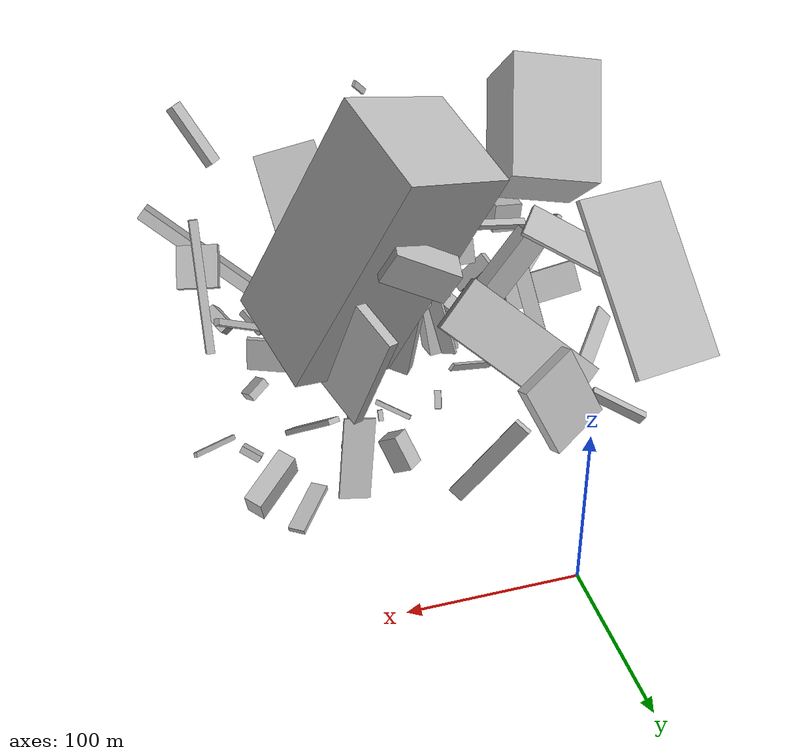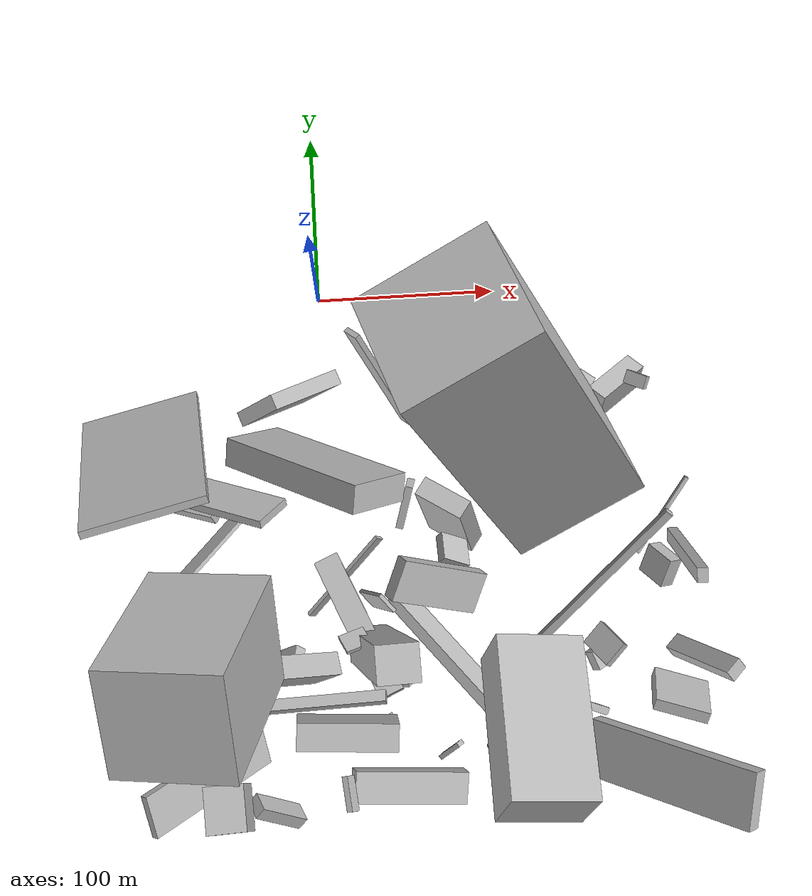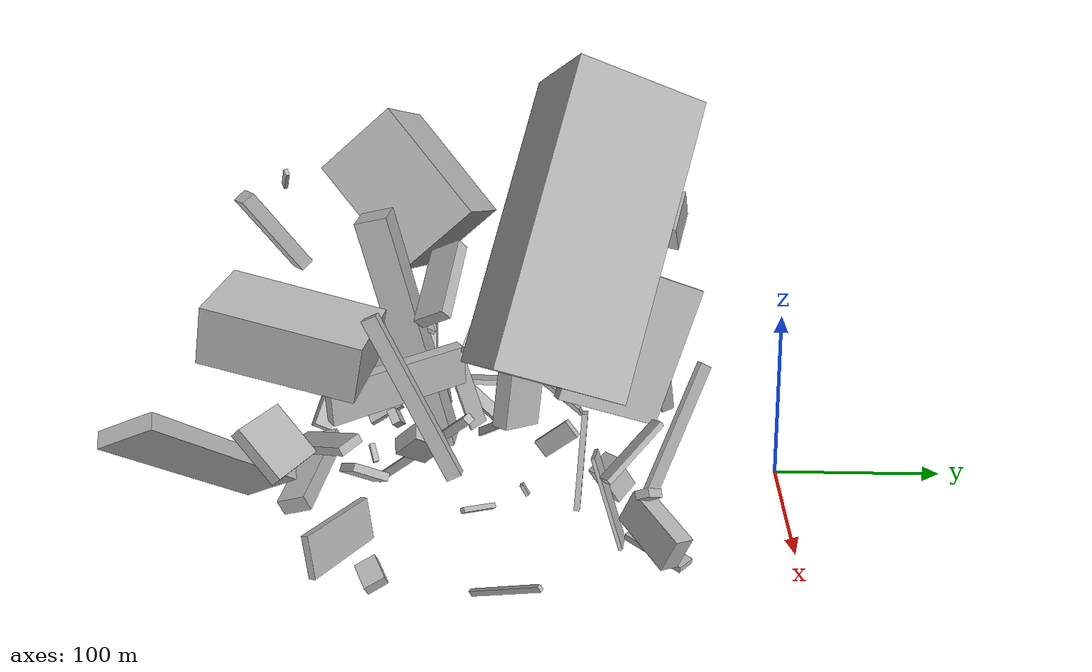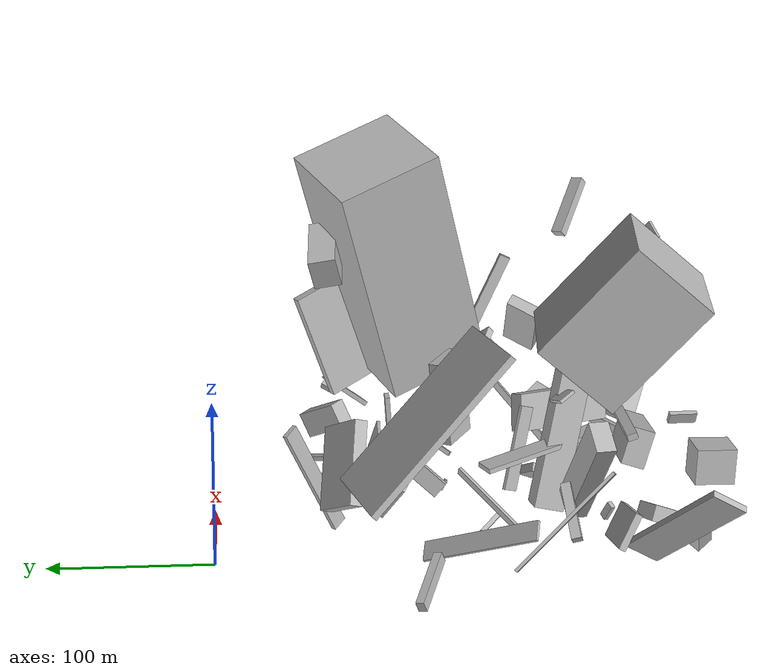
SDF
<sdf version="1.6">
 <world name="default">
  <model name="building_2">
   <static>0</static>
   <pose>-4.265464963011265 -214.34550953891124 35.140416664109665 0.7161109243127337 -0.007068046469748389 -1.4078705098081357</pose>
   <link name="link">
    <gravity>0</gravity>
    <pose>0 0 36.5 0 0 0</pose>
    <collision name="collision"><geometry><box><size>12 20 73</size></box></geometry></collision>
    <visual name="visual">
     <cast_shadows>0</cast_shadows>
     <geometry><box><size>12 20 73</size></box></geometry>
     <material>
      <script>
       <uri>model://HANNAS_wall/materials/scripts</uri>
       <uri>model://HANNAS_wall/materials/textures</uri>
       <name>vrc/HANNAS_wall</name>
      </script>
     </material>
    </visual>
   </link>
  </model>
  <model name="building_21">
   <static>0</static>
   <pose>8.457655197368247 -112.51763174960851 65.24477038749917 0.6654835469640487 -0.5815607926443658 -0.557341626577998</pose>
   <link name="link">
    <gravity>0</gravity>
    <pose>0 0 18.0 0 0 0</pose>
    <collision name="collision"><geometry><box><size>93 15 36</size></box></geometry></collision>
    <visual name="visual">
     <cast_shadows>0</cast_shadows>
     <geometry><box><size>93 15 36</size></box></geometry>
     <material>
      <script>
       <uri>model://HANNAS_wall/materials/scripts</uri>
       <uri>model://HANNAS_wall/materials/textures</uri>
       <name>vrc/HANNAS_wall</name>
      </script>
     </material>
    </visual>
   </link>
  </model>
  <model name="building_30">
   <static>0</static>
   <pose>117.10664770685433 -130.943974789597 100.99099463609906 0.2889966119366335 -0.3691784653962624 -1.268954633508064</pose>
   <link name="link">
    <gravity>0</gravity>
    <pose>0 0 75.0 0 0 0</pose>
    <collision name="collision"><geometry><box><size>66 68 150</size></box></geometry></collision>
    <visual name="visual">
     <cast_shadows>0</cast_shadows>
     <geometry><box><size>66 68 150</size></box></geometry>
     <material>
      <script>
       <uri>model://HANNAS_wall/materials/scripts</uri>
       <uri>model://HANNAS_wall/materials/textures</uri>
       <name>vrc/HANNAS_wall</name>
      </script>
     </material>
    </visual>
   </link>
  </model>
  <model name="building_32">
   <static>0</static>
   <pose>44.03630529259533 -130.80900042439174 38.514397665553915 -1.5089520208758345 -0.6667997113792358 1.2417032428408032</pose>
   <link name="link">
    <gravity>0</gravity>
    <pose>0 0 2.0 0 0 0</pose>
    <collision name="collision"><geometry><box><size>25 11 4</size></box></geometry></collision>
    <visual name="visual">
     <cast_shadows>0</cast_shadows>
     <geometry><box><size>25 11 4</size></box></geometry>
     <material>
      <script>
       <uri>model://HANNAS_wall/materials/scripts</uri>
       <uri>model://HANNAS_wall/materials/textures</uri>
       <name>vrc/HANNAS_wall</name>
      </script>
     </material>
    </visual>
   </link>
  </model>
  <model name="building_54">
   <static>0</static>
   <pose>134.03059115076852 -218.70502664564117 59.70933349383591 0.9904791006068053 -0.922460166087802 2.853701856156002</pose>
   <link name="link">
    <gravity>0</gravity>
    <pose>0 0 7.0 0 0 0</pose>
    <collision name="collision"><geometry><box><size>4 19 14</size></box></geometry></collision>
    <visual name="visual">
     <cast_shadows>0</cast_shadows>
     <geometry><box><size>4 19 14</size></box></geometry>
     <material>
      <script>
       <uri>model://HANNAS_wall/materials/scripts</uri>
       <uri>model://HANNAS_wall/materials/textures</uri>
       <name>vrc/HANNAS_wall</name>
      </script>
     </material>
    </visual>
   </link>
  </model>
  <model name="building_55">
   <static>0</static>
   <pose>129.09036832552988 -263.2747955892208 52.71069373102612 0.8818578832316202 -0.39101700148677526 1.4134784744206341</pose>
   <link name="link">
    <gravity>0</gravity>
    <pose>0 0 46.5 0 0 0</pose>
    <collision name="collision"><geometry><box><size>29 8 93</size></box></geometry></collision>
    <visual name="visual">
     <cast_shadows>0</cast_shadows>
     <geometry><box><size>29 8 93</size></box></geometry>
     <material>
      <script>
       <uri>model://HANNAS_wall/materials/scripts</uri>
       <uri>model://HANNAS_wall/materials/textures</uri>
       <name>vrc/HANNAS_wall</name>
      </script>
     </material>
    </visual>
   </link>
  </model>
  <model name="building_64">
   <static>0</static>
   <pose>36.82486771939405 -268.0702073893161 15.54435437106374 2.3558703606401203 -1.1806308722749863 -0.8754767826436558</pose>
   <link name="link">
    <gravity>0</gravity>
    <pose>0 0 8.5 0 0 0</pose>
    <collision name="collision"><geometry><box><size>10 61 17</size></box></geometry></collision>
    <visual name="visual">
     <cast_shadows>0</cast_shadows>
     <geometry><box><size>10 61 17</size></box></geometry>
     <material>
      <script>
       <uri>model://HANNAS_wall/materials/scripts</uri>
       <uri>model://HANNAS_wall/materials/textures</uri>
       <name>vrc/HANNAS_wall</name>
      </script>
     </material>
    </visual>
   </link>
  </model>
  <model name="building_67">
   <static>0</static>
   <pose>35.60022081892298 -215.35845387333364 94.86126409331602 1.4714746004522552 0.20223589936559444 -1.551034634614684</pose>
   <link name="link">
    <gravity>0</gravity>
    <pose>0 0 10.0 0 0 0</pose>
    <collision name="collision"><geometry><box><size>18 143 20</size></box></geometry></collision>
    <visual name="visual">
     <cast_shadows>0</cast_shadows>
     <geometry><box><size>18 143 20</size></box></geometry>
     <material>
      <script>
       <uri>model://HANNAS_wall/materials/scripts</uri>
       <uri>model://HANNAS_wall/materials/textures</uri>
       <name>vrc/HANNAS_wall</name>
      </script>
     </material>
    </visual>
   </link>
  </model>
  <model name="building_70">
   <static>0</static>
   <pose>129.9600652152976 -186.9479272892071 71.1638735976464 2.014341622331131 -0.5898850291504657 0.6825994986491154</pose>
   <link name="link">
    <gravity>0</gravity>
    <pose>0 0 2.0 0 0 0</pose>
    <collision name="collision"><geometry><box><size>120 4 4</size></box></geometry></collision>
    <visual name="visual">
     <cast_shadows>0</cast_shadows>
     <geometry><box><size>120 4 4</size></box></geometry>
     <material>
      <script>
       <uri>model://HANNAS_wall/materials/scripts</uri>
       <uri>model://HANNAS_wall/materials/textures</uri>
       <name>vrc/HANNAS_wall</name>
      </script>
     </material>
    </visual>
   </link>
  </model>
  <model name="building_82">
   <static>0</static>
   <pose>156.29591486066607 -77.7336352585447 36.95442466836951 0.3963106605677967 0.20833840254748312 2.347769462660655</pose>
   <link name="link">
    <gravity>0</gravity>
    <pose>0 0 8.5 0 0 0</pose>
    <collision name="collision"><geometry><box><size>11 34 17</size></box></geometry></collision>
    <visual name="visual">
     <cast_shadows>0</cast_shadows>
     <geometry><box><size>11 34 17</size></box></geometry>
     <material>
      <script>
       <uri>model://HANNAS_wall/materials/scripts</uri>
       <uri>model://HANNAS_wall/materials/textures</uri>
       <name>vrc/HANNAS_wall</name>
      </script>
     </material>
    </visual>
   </link>
  </model>
  <model name="building_90">
   <static>0</static>
   <pose>-56.04111779029377 -110.48113359825709 112.77134011998304 -1.6294803322030729 0.8294587691193467 1.746389617576886</pose>
   <link name="link">
    <gravity>0</gravity>
    <pose>0 0 30.5 0 0 0</pose>
    <collision name="collision"><geometry><box><size>113 4 61</size></box></geometry></collision>
    <visual name="visual">
     <cast_shadows>0</cast_shadows>
     <geometry><box><size>113 4 61</size></box></geometry>
     <material>
      <script>
       <uri>model://HANNAS_wall/materials/scripts</uri>
       <uri>model://HANNAS_wall/materials/textures</uri>
       <name>vrc/HANNAS_wall</name>
      </script>
     </material>
    </visual>
   </link>
  </model>
  <model name="building_93">
   <static>0</static>
   <pose>-26.59798900375001 -73.94937219585813 42.5041613676136 -0.3794871209268782 0.2508420091364803 -1.219588153596777</pose>
   <link name="link">
    <gravity>0</gravity>
    <pose>0 0 25.0 0 0 0</pose>
    <collision name="collision"><geometry><box><size>8 39 50</size></box></geometry></collision>
    <visual name="visual">
     <cast_shadows>0</cast_shadows>
     <geometry><box><size>8 39 50</size></box></geometry>
     <material>
      <script>
       <uri>model://HANNAS_wall/materials/scripts</uri>
       <uri>model://HANNAS_wall/materials/textures</uri>
       <name>vrc/HANNAS_wall</name>
      </script>
     </material>
    </visual>
   </link>
  </model>
  <model name="building_98">
   <static>0</static>
   <pose>119.18431412080068 -237.2127195605793 16.167111881668447 -0.2189825948224754 1.4366462722114635 0.984672169318002</pose>
   <link name="link">
    <gravity>0</gravity>
    <pose>0 0 2.0 0 0 0</pose>
    <collision name="collision"><geometry><box><size>23 48 4</size></box></geometry></collision>
    <visual name="visual">
     <cast_shadows>0</cast_shadows>
     <geometry><box><size>23 48 4</size></box></geometry>
     <material>
      <script>
       <uri>model://HANNAS_wall/materials/scripts</uri>
       <uri>model://HANNAS_wall/materials/textures</uri>
       <name>vrc/HANNAS_wall</name>
      </script>
     </material>
    </visual>
   </link>
  </model>
  <model name="building_103">
   <static>0</static>
   <pose>141.3063366610645 -208.37222591819136 11.544024826815711 -2.373138286693042 1.0035124382310943 2.831521102307824</pose>
   <link name="link">
    <gravity>0</gravity>
    <pose>0 0 5.5 0 0 0</pose>
    <collision name="collision"><geometry><box><size>6 15 11</size></box></geometry></collision>
    <visual name="visual">
     <cast_shadows>0</cast_shadows>
     <geometry><box><size>6 15 11</size></box></geometry>
     <material>
      <script>
       <uri>model://HANNAS_wall/materials/scripts</uri>
       <uri>model://HANNAS_wall/materials/textures</uri>
       <name>vrc/HANNAS_wall</name>
      </script>
     </material>
    </visual>
   </link>
  </model>
  <model name="building_111">
   <static>0</static>
   <pose>103.83473351075395 -114.50796457504876 26.527256762634273 0.08405672233436892 0.16559142417451744 -3.122697884316718</pose>
   <link name="link">
    <gravity>0</gravity>
    <pose>0 0 25.5 0 0 0</pose>
    <collision name="collision"><geometry><box><size>8 3 51</size></box></geometry></collision>
    <visual name="visual">
     <cast_shadows>0</cast_shadows>
     <geometry><box><size>8 3 51</size></box></geometry>
     <material>
      <script>
       <uri>model://HANNAS_wall/materials/scripts</uri>
       <uri>model://HANNAS_wall/materials/textures</uri>
       <name>vrc/HANNAS_wall</name>
      </script>
     </material>
    </visual>
   </link>
  </model>
  <model name="building_116">
   <static>0</static>
   <pose>96.87498388201024 -245.16952385712105 55.82285012252682 -0.2928568030673622 0.2648987880419629 -2.292056646102759</pose>
   <link name="link">
    <gravity>0</gravity>
    <pose>0 0 2.5 0 0 0</pose>
    <collision name="collision"><geometry><box><size>51 13 5</size></box></geometry></collision>
    <visual name="visual">
     <cast_shadows>0</cast_shadows>
     <geometry><box><size>51 13 5</size></box></geometry>
     <material>
      <script>
       <uri>model://HANNAS_wall/materials/scripts</uri>
       <uri>model://HANNAS_wall/materials/textures</uri>
       <name>vrc/HANNAS_wall</name>
      </script>
     </material>
    </visual>
   </link>
  </model>
  <model name="building_118">
   <static>0</static>
   <pose>19.160162841406475 -179.2739129325653 36.47136834688626 0.01459105093743752 -0.30164451281721444 2.28811932466393</pose>
   <link name="link">
    <gravity>0</gravity>
    <pose>0 0 26.0 0 0 0</pose>
    <collision name="collision"><geometry><box><size>11 2 52</size></box></geometry></collision>
    <visual name="visual">
     <cast_shadows>0</cast_shadows>
     <geometry><box><size>11 2 52</size></box></geometry>
     <material>
      <script>
       <uri>model://HANNAS_wall/materials/scripts</uri>
       <uri>model://HANNAS_wall/materials/textures</uri>
       <name>vrc/HANNAS_wall</name>
      </script>
     </material>
    </visual>
   </link>
  </model>
  <model name="building_119">
   <static>0</static>
   <pose>100.23458117888589 -253.6107986539479 132.1361113279835 2.9410484896377467 -0.25910080724764406 -1.570773547076893</pose>
   <link name="link">
    <gravity>0</gravity>
    <pose>0 0 16.0 0 0 0</pose>
    <collision name="collision"><geometry><box><size>80 42 32</size></box></geometry></collision>
    <visual name="visual">
     <cast_shadows>0</cast_shadows>
     <geometry><box><size>80 42 32</size></box></geometry>
     <material>
      <script>
       <uri>model://HANNAS_wall/materials/scripts</uri>
       <uri>model://HANNAS_wall/materials/textures</uri>
       <name>vrc/HANNAS_wall</name>
      </script>
     </material>
    </visual>
   </link>
  </model>
  <model name="building_122">
   <static>0</static>
   <pose>98.64367186893618 -64.19219145227608 108.47146421775933 1.1735765112685452 -0.051530652573093014 0.440255926948289</pose>
   <link name="link">
    <gravity>0</gravity>
    <pose>0 0 27.5 0 0 0</pose>
    <collision name="collision"><geometry><box><size>6 71 55</size></box></geometry></collision>
    <visual name="visual">
     <cast_shadows>0</cast_shadows>
     <geometry><box><size>6 71 55</size></box></geometry>
     <material>
      <script>
       <uri>model://HANNAS_wall/materials/scripts</uri>
       <uri>model://HANNAS_wall/materials/textures</uri>
       <name>vrc/HANNAS_wall</name>
      </script>
     </material>
    </visual>
   </link>
  </model>
  <model name="building_123">
   <static>0</static>
   <pose>68.60610485620734 -181.37069689157627 5.656118047330042 -2.015256721518883 0.9031881334917877 0.5677242479688731</pose>
   <link name="link">
    <gravity>0</gravity>
    <pose>0 0 12.5 0 0 0</pose>
    <collision name="collision"><geometry><box><size>3 3 25</size></box></geometry></collision>
    <visual name="visual">
     <cast_shadows>0</cast_shadows>
     <geometry><box><size>3 3 25</size></box></geometry>
     <material>
      <script>
       <uri>model://HANNAS_wall/materials/scripts</uri>
       <uri>model://HANNAS_wall/materials/textures</uri>
       <name>vrc/HANNAS_wall</name>
      </script>
     </material>
    </visual>
   </link>
  </model>
  <model name="building_133">
   <static>0</static>
   <pose>165.4870641929346 -80.38280643514275 65.57493204488283 1.1111709343190665 0.42480155172595807 2.565120743197266</pose>
   <link name="link">
    <gravity>0</gravity>
    <pose>0 0 3.5 0 0 0</pose>
    <collision name="collision"><geometry><box><size>12 4 7</size></box></geometry></collision>
    <visual name="visual">
     <cast_shadows>0</cast_shadows>
     <geometry><box><size>12 4 7</size></box></geometry>
     <material>
      <script>
       <uri>model://HANNAS_wall/materials/scripts</uri>
       <uri>model://HANNAS_wall/materials/textures</uri>
       <name>vrc/HANNAS_wall</name>
      </script>
     </material>
    </visual>
   </link>
  </model>
  <model name="building_134">
   <static>0</static>
   <pose>176.8685713898887 -179.57494807406042 114.74142206709148 1.612653322111994 -1.1384957281749355 -1.6065433803653633</pose>
   <link name="link">
    <gravity>0</gravity>
    <pose>0 0 2.5 0 0 0</pose>
    <collision name="collision"><geometry><box><size>80 7 5</size></box></geometry></collision>
    <visual name="visual">
     <cast_shadows>0</cast_shadows>
     <geometry><box><size>80 7 5</size></box></geometry>
     <material>
      <script>
       <uri>model://HANNAS_wall/materials/scripts</uri>
       <uri>model://HANNAS_wall/materials/textures</uri>
       <name>vrc/HANNAS_wall</name>
      </script>
     </material>
    </visual>
   </link>
  </model>
  <model name="building_135">
   <static>0</static>
   <pose>63.25730305731042 -176.34906886290585 105.48629114363378 2.15465286123464 0.8613509696868397 -2.652416901295734</pose>
   <link name="link">
    <gravity>0</gravity>
    <pose>0 0 7.5 0 0 0</pose>
    <collision name="collision"><geometry><box><size>5 15 15</size></box></geometry></collision>
    <visual name="visual">
     <cast_shadows>0</cast_shadows>
     <geometry><box><size>5 15 15</size></box></geometry>
     <material>
      <script>
       <uri>model://HANNAS_wall/materials/scripts</uri>
       <uri>model://HANNAS_wall/materials/textures</uri>
       <name>vrc/HANNAS_wall</name>
      </script>
     </material>
    </visual>
   </link>
  </model>
  <model name="building_139">
   <static>0</static>
   <pose>169.72336114505777 -185.19062023765713 93.82598808777294 -2.2500915324150186 0.616615850692262 0.22243706019914328</pose>
   <link name="link">
    <gravity>0</gravity>
    <pose>0 0 8.0 0 0 0</pose>
    <collision name="collision"><geometry><box><size>8 15 16</size></box></geometry></collision>
    <visual name="visual">
     <cast_shadows>0</cast_shadows>
     <geometry><box><size>8 15 16</size></box></geometry>
     <material>
      <script>
       <uri>model://HANNAS_wall/materials/scripts</uri>
       <uri>model://HANNAS_wall/materials/textures</uri>
       <name>vrc/HANNAS_wall</name>
      </script>
     </material>
    </visual>
   </link>
  </model>
  <model name="building_141">
   <static>0</static>
   <pose>-77.63936774420743 -123.65457419610453 15.446372538515723 -1.7473257350252585 -0.4741033861206407 -0.3950172431933037</pose>
   <link name="link">
    <gravity>0</gravity>
    <pose>0 0 2.5 0 0 0</pose>
    <collision name="collision"><geometry><box><size>39 7 5</size></box></geometry></collision>
    <visual name="visual">
     <cast_shadows>0</cast_shadows>
     <geometry><box><size>39 7 5</size></box></geometry>
     <material>
      <script>
       <uri>model://HANNAS_wall/materials/scripts</uri>
       <uri>model://HANNAS_wall/materials/textures</uri>
       <name>vrc/HANNAS_wall</name>
      </script>
     </material>
    </visual>
   </link>
  </model>
  <model name="building_143">
   <static>0</static>
   <pose>6.84644482716004 -244.50287059443713 73.52250939105599 1.8556902141842115 0.06122076679206859 -0.06165881060691995</pose>
   <link name="link">
    <gravity>0</gravity>
    <pose>0 0 7.0 0 0 0</pose>
    <collision name="collision"><geometry><box><size>50 23 14</size></box></geometry></collision>
    <visual name="visual">
     <cast_shadows>0</cast_shadows>
     <geometry><box><size>50 23 14</size></box></geometry>
     <material>
      <script>
       <uri>model://HANNAS_wall/materials/scripts</uri>
       <uri>model://HANNAS_wall/materials/textures</uri>
       <name>vrc/HANNAS_wall</name>
      </script>
     </material>
    </visual>
   </link>
  </model>
  <model name="building_150">
   <static>0</static>
   <pose>-53.16533592566607 -200.91634513525523 40.29401314918282 -1.9792663880752985 0.6869611116204871 -2.104991381200642</pose>
   <link name="link">
    <gravity>0</gravity>
    <pose>0 0 5.5 0 0 0</pose>
    <collision name="collision"><geometry><box><size>2 80 11</size></box></geometry></collision>
    <visual name="visual">
     <cast_shadows>0</cast_shadows>
     <geometry><box><size>2 80 11</size></box></geometry>
     <material>
      <script>
       <uri>model://HANNAS_wall/materials/scripts</uri>
       <uri>model://HANNAS_wall/materials/textures</uri>
       <name>vrc/HANNAS_wall</name>
      </script>
     </material>
    </visual>
   </link>
  </model>
  <model name="building_151">
   <static>0</static>
   <pose>72.7082145858484 -92.68008941443725 22.246785960721553 0.5630718255832776 -0.03979023214397993 0.720623168198426</pose>
   <link name="link">
    <gravity>0</gravity>
    <pose>0 0 11.0 0 0 0</pose>
    <collision name="collision"><geometry><box><size>11 14 22</size></box></geometry></collision>
    <visual name="visual">
     <cast_shadows>0</cast_shadows>
     <geometry><box><size>11 14 22</size></box></geometry>
     <material>
      <script>
       <uri>model://HANNAS_wall/materials/scripts</uri>
       <uri>model://HANNAS_wall/materials/textures</uri>
       <name>vrc/HANNAS_wall</name>
      </script>
     </material>
    </visual>
   </link>
  </model>
  <model name="building_154">
   <static>0</static>
   <pose>-0.7224412832864715 -160.98400024004968 57.07068552480791 0.43584611800257866 1.3761994859210922 -0.7336296672819462</pose>
   <link name="link">
    <gravity>0</gravity>
    <pose>0 0 40.0 0 0 0</pose>
    <collision name="collision"><geometry><box><size>3 13 80</size></box></geometry></collision>
    <visual name="visual">
     <cast_shadows>0</cast_shadows>
     <geometry><box><size>3 13 80</size></box></geometry>
     <material>
      <script>
       <uri>model://HANNAS_wall/materials/scripts</uri>
       <uri>model://HANNAS_wall/materials/textures</uri>
       <name>vrc/HANNAS_wall</name>
      </script>
     </material>
    </visual>
   </link>
  </model>
  <model name="building_155">
   <static>0</static>
   <pose>71.23050265559921 -78.58384860864837 175.16567001841037 1.9438146171542554 -1.0503298679439146 2.649571710442287</pose>
   <link name="link">
    <gravity>0</gravity>
    <pose>0 0 8.5 0 0 0</pose>
    <collision name="collision"><geometry><box><size>20 39 17</size></box></geometry></collision>
    <visual name="visual">
     <cast_shadows>0</cast_shadows>
     <geometry><box><size>20 39 17</size></box></geometry>
     <material>
      <script>
       <uri>model://HANNAS_wall/materials/scripts</uri>
       <uri>model://HANNAS_wall/materials/textures</uri>
       <name>vrc/HANNAS_wall</name>
      </script>
     </material>
    </visual>
   </link>
  </model>
  <model name="building_157">
   <static>0</static>
   <pose>169.86428997039482 -242.112633833977 91.845640954065 2.2684612202040797 0.06929740927560153 -0.31641200230975075</pose>
   <link name="link">
    <gravity>0</gravity>
    <pose>0 0 3.0 0 0 0</pose>
    <collision name="collision"><geometry><box><size>27 28 6</size></box></geometry></collision>
    <visual name="visual">
     <cast_shadows>0</cast_shadows>
     <geometry><box><size>27 28 6</size></box></geometry>
     <material>
      <script>
       <uri>model://HANNAS_wall/materials/scripts</uri>
       <uri>model://HANNAS_wall/materials/textures</uri>
       <name>vrc/HANNAS_wall</name>
      </script>
     </material>
    </visual>
   </link>
  </model>
  <model name="building_159">
   <static>0</static>
   <pose>32.03619812071453 -62.25374940463121 42.179719458745694 -1.5972328983035993 1.026006301826804 -0.8348892972943885</pose>
   <link name="link">
    <gravity>0</gravity>
    <pose>0 0 1.5 0 0 0</pose>
    <collision name="collision"><geometry><box><size>80 10 3</size></box></geometry></collision>
    <visual name="visual">
     <cast_shadows>0</cast_shadows>
     <geometry><box><size>80 10 3</size></box></geometry>
     <material>
      <script>
       <uri>model://HANNAS_wall/materials/scripts</uri>
       <uri>model://HANNAS_wall/materials/textures</uri>
       <name>vrc/HANNAS_wall</name>
      </script>
     </material>
    </visual>
   </link>
  </model>
  <model name="building_162">
   <static>0</static>
   <pose>-13.34472521475455 -237.46448959481785 97.08578458904265 -2.8197828778380933 0.12762575531290013 -3.1243558554226807</pose>
   <link name="link">
    <gravity>0</gravity>
    <pose>0 0 2.0 0 0 0</pose>
    <collision name="collision"><geometry><box><size>80 6 4</size></box></geometry></collision>
    <visual name="visual">
     <cast_shadows>0</cast_shadows>
     <geometry><box><size>80 6 4</size></box></geometry>
     <material>
      <script>
       <uri>model://HANNAS_wall/materials/scripts</uri>
       <uri>model://HANNAS_wall/materials/textures</uri>
       <name>vrc/HANNAS_wall</name>
      </script>
     </material>
    </visual>
   </link>
  </model>
  <model name="building_175">
   <static>0</static>
   <pose>27.3297248792964 -239.8629047435749 15.218236703601953 -0.1000074896484922 0.5526082568195779 -2.7238361600879206</pose>
   <link name="link">
    <gravity>0</gravity>
    <pose>0 0 5.5 0 0 0</pose>
    <collision name="collision"><geometry><box><size>5 3 11</size></box></geometry></collision>
    <visual name="visual">
     <cast_shadows>0</cast_shadows>
     <geometry><box><size>5 3 11</size></box></geometry>
     <material>
      <script>
       <uri>model://HANNAS_wall/materials/scripts</uri>
       <uri>model://HANNAS_wall/materials/textures</uri>
       <name>vrc/HANNAS_wall</name>
      </script>
     </material>
    </visual>
   </link>
  </model>
  <model name="building_180">
   <static>0</static>
   <pose>-65.01395495579396 -268.02563006401135 41.766918626077455 2.4951396597796633 -0.6263667189431273 -2.5395103993794637</pose>
   <link name="link">
    <gravity>0</gravity>
    <pose>0 0 2.0 0 0 0</pose>
    <collision name="collision"><geometry><box><size>80 23 4</size></box></geometry></collision>
    <visual name="visual">
     <cast_shadows>0</cast_shadows>
     <geometry><box><size>80 23 4</size></box></geometry>
     <material>
      <script>
       <uri>model://HANNAS_wall/materials/scripts</uri>
       <uri>model://HANNAS_wall/materials/textures</uri>
       <name>vrc/HANNAS_wall</name>
      </script>
     </material>
    </visual>
   </link>
  </model>
  <model name="building_191">
   <static>0</static>
   <pose>-41.19637756778425 -210.64821571714631 25.02284376765015 0.7168342927704968 0.2915526067996107 1.3761347448640593</pose>
   <link name="link">
    <gravity>0</gravity>
    <pose>0 0 18.0 0 0 0</pose>
    <collision name="collision"><geometry><box><size>6 6 36</size></box></geometry></collision>
    <visual name="visual">
     <cast_shadows>0</cast_shadows>
     <geometry><box><size>6 6 36</size></box></geometry>
     <material>
      <script>
       <uri>model://HANNAS_wall/materials/scripts</uri>
       <uri>model://HANNAS_wall/materials/textures</uri>
       <name>vrc/HANNAS_wall</name>
      </script>
     </material>
    </visual>
   </link>
  </model>
  <model name="building_194">
   <static>0</static>
   <pose>56.94393099574823 -181.96447690374134 136.93748167841787 2.085956927840523 0.6522625768414212 -0.08814170703717637</pose>
   <link name="link">
    <gravity>0</gravity>
    <pose>0 0 10.0 0 0 0</pose>
    <collision name="collision"><geometry><box><size>48 7 20</size></box></geometry></collision>
    <visual name="visual">
     <cast_shadows>0</cast_shadows>
     <geometry><box><size>48 7 20</size></box></geometry>
     <material>
      <script>
       <uri>model://HANNAS_wall/materials/scripts</uri>
       <uri>model://HANNAS_wall/materials/textures</uri>
       <name>vrc/HANNAS_wall</name>
      </script>
     </material>
    </visual>
   </link>
  </model>
  <model name="building_198">
   <static>0</static>
   <pose>-69.35458328737866 -149.71198683904194 29.865440665442254 -0.6501210067321338 -0.35641796016545846 -2.2553972061552563</pose>
   <link name="link">
    <gravity>0</gravity>
    <pose>0 0 6.0 0 0 0</pose>
    <collision name="collision"><geometry><box><size>80 2 12</size></box></geometry></collision>
    <visual name="visual">
     <cast_shadows>0</cast_shadows>
     <geometry><box><size>80 2 12</size></box></geometry>
     <material>
      <script>
       <uri>model://HANNAS_wall/materials/scripts</uri>
       <uri>model://HANNAS_wall/materials/textures</uri>
       <name>vrc/HANNAS_wall</name>
      </script>
     </material>
    </visual>
   </link>
  </model>
  <model name="building_201">
   <static>0</static>
   <pose>133.84346485884495 -69.61778500047996 23.481990800763107 -1.6126901671749312 -0.18698823689973065 -2.2076726721886377</pose>
   <link name="link">
    <gravity>0</gravity>
    <pose>0 0 5.0 0 0 0</pose>
    <collision name="collision"><geometry><box><size>34 3 10</size></box></geometry></collision>
    <visual name="visual">
     <cast_shadows>0</cast_shadows>
     <geometry><box><size>34 3 10</size></box></geometry>
     <material>
      <script>
       <uri>model://HANNAS_wall/materials/scripts</uri>
       <uri>model://HANNAS_wall/materials/textures</uri>
       <name>vrc/HANNAS_wall</name>
      </script>
     </material>
    </visual>
   </link>
  </model>
  <model name="building_206">
   <static>0</static>
   <pose>127.23371811938424 -87.66740834414435 70.60219667461095 -1.317323234088389 0.6010545864027776 -0.8931307144009247</pose>
   <link name="link">
    <gravity>0</gravity>
    <pose>0 0 4.0 0 0 0</pose>
    <collision name="collision"><geometry><box><size>39 3 8</size></box></geometry></collision>
    <visual name="visual">
     <cast_shadows>0</cast_shadows>
     <geometry><box><size>39 3 8</size></box></geometry>
     <material>
      <script>
       <uri>model://HANNAS_wall/materials/scripts</uri>
       <uri>model://HANNAS_wall/materials/textures</uri>
       <name>vrc/HANNAS_wall</name>
      </script>
     </material>
    </visual>
   </link>
  </model>
  <model name="building_207">
   <static>0</static>
   <pose>66.95571385313262 -150.51964295169068 57.30014984048724 0.018714344645083696 0.18133940356099928 2.5292528657953035</pose>
   <link name="link">
    <gravity>0</gravity>
    <pose>0 0 27.0 0 0 0</pose>
    <collision name="collision"><geometry><box><size>26 10 54</size></box></geometry></collision>
    <visual name="visual">
     <cast_shadows>0</cast_shadows>
     <geometry><box><size>26 10 54</size></box></geometry>
     <material>
      <script>
       <uri>model://HANNAS_wall/materials/scripts</uri>
       <uri>model://HANNAS_wall/materials/textures</uri>
       <name>vrc/HANNAS_wall</name>
      </script>
     </material>
    </visual>
   </link>
  </model>
  <model name="building_210">
   <static>0</static>
   <pose>111.53132732629764 -98.74303485567081 32.791977139133806 1.736467512535818 0.2964067312292615 -1.567673898894252</pose>
   <link name="link">
    <gravity>0</gravity>
    <pose>0 0 9.5 0 0 0</pose>
    <collision name="collision"><geometry><box><size>2 50 19</size></box></geometry></collision>
    <visual name="visual">
     <cast_shadows>0</cast_shadows>
     <geometry><box><size>2 50 19</size></box></geometry>
     <material>
      <script>
       <uri>model://HANNAS_wall/materials/scripts</uri>
       <uri>model://HANNAS_wall/materials/textures</uri>
       <name>vrc/HANNAS_wall</name>
      </script>
     </material>
    </visual>
   </link>
  </model>
  <model name="building_211">
   <static>0</static>
   <pose>7.394109596898332 -165.80131390403406 32.63608430195195 1.2019160888982447 -0.5053037093101266 0.7232955823429961</pose>
   <link name="link">
    <gravity>0</gravity>
    <pose>0 0 1.0 0 0 0</pose>
    <collision name="collision"><geometry><box><size>59 5 2</size></box></geometry></collision>
    <visual name="visual">
     <cast_shadows>0</cast_shadows>
     <geometry><box><size>59 5 2</size></box></geometry>
     <material>
      <script>
       <uri>model://HANNAS_wall/materials/scripts</uri>
       <uri>model://HANNAS_wall/materials/textures</uri>
       <name>vrc/HANNAS_wall</name>
      </script>
     </material>
    </visual>
   </link>
  </model>
  <model name="building_217">
   <static>0</static>
   <pose>-65.08658346018213 -234.21232799927589 40.508853773802514 -0.4198902372011861 -1.0829254345114885 -1.2385804161838063</pose>
   <link name="link">
    <gravity>0</gravity>
    <pose>0 0 2.0 0 0 0</pose>
    <collision name="collision"><geometry><box><size>22 53 4</size></box></geometry></collision>
    <visual name="visual">
     <cast_shadows>0</cast_shadows>
     <geometry><box><size>22 53 4</size></box></geometry>
     <material>
      <script>
       <uri>model://HANNAS_wall/materials/scripts</uri>
       <uri>model://HANNAS_wall/materials/textures</uri>
       <name>vrc/HANNAS_wall</name>
      </script>
     </material>
    </visual>
   </link>
  </model>
  <model name="building_227">
   <static>0</static>
   <pose>52.731845898314766 -268.8298910773645 189.1513520926954 -1.6835232802427984 -0.7910635911220858 -2.465869292046212</pose>
   <link name="link">
    <gravity>0</gravity>
    <pose>0 0 1.0 0 0 0</pose>
    <collision name="collision"><geometry><box><size>4 12 2</size></box></geometry></collision>
    <visual name="visual">
     <cast_shadows>0</cast_shadows>
     <geometry><box><size>4 12 2</size></box></geometry>
     <material>
      <script>
       <uri>model://HANNAS_wall/materials/scripts</uri>
       <uri>model://HANNAS_wall/materials/textures</uri>
       <name>vrc/HANNAS_wall</name>
      </script>
     </material>
    </visual>
   </link>
  </model>
  <model name="building_228">
   <static>0</static>
   <pose>75.38767021392646 -143.4797145575923 19.59834723888184 -0.49477606022625603 0.004701430128238113 3.1017321663661903</pose>
   <link name="link">
    <gravity>0</gravity>
    <pose>0 0 3.5 0 0 0</pose>
    <collision name="collision"><geometry><box><size>3 2 7</size></box></geometry></collision>
    <visual name="visual">
     <cast_shadows>0</cast_shadows>
     <geometry><box><size>3 2 7</size></box></geometry>
     <material>
      <script>
       <uri>model://HANNAS_wall/materials/scripts</uri>
       <uri>model://HANNAS_wall/materials/textures</uri>
       <name>vrc/HANNAS_wall</name>
      </script>
     </material>
    </visual>
   </link>
  </model>
  <model name="building_231">
   <static>0</static>
   <pose>-49.344661585185555 -203.63546734747172 133.778177057213 -0.2296763602187461 -0.6990439616286438 1.604350238359699</pose>
   <link name="link">
    <gravity>0</gravity>
    <pose>0 0 40.0 0 0 0</pose>
    <collision name="collision"><geometry><box><size>56 58 80</size></box></geometry></collision>
    <visual name="visual">
     <cast_shadows>0</cast_shadows>
     <geometry><box><size>56 58 80</size></box></geometry>
     <material>
      <script>
       <uri>model://HANNAS_wall/materials/scripts</uri>
       <uri>model://HANNAS_wall/materials/textures</uri>
       <name>vrc/HANNAS_wall</name>
      </script>
     </material>
    </visual>
   </link>
  </model>
  <model name="building_243">
   <static>0</static>
   <pose>29.716042377296407 -223.90552107071449 43.79373615515203 0.6687444622757458 0.8441866246260812 0.7729602415376717</pose>
   <link name="link">
    <gravity>0</gravity>
    <pose>0 0 6.0 0 0 0</pose>
    <collision name="collision"><geometry><box><size>9 5 12</size></box></geometry></collision>
    <visual name="visual">
     <cast_shadows>0</cast_shadows>
     <geometry><box><size>9 5 12</size></box></geometry>
     <material>
      <script>
       <uri>model://HANNAS_wall/materials/scripts</uri>
       <uri>model://HANNAS_wall/materials/textures</uri>
       <name>vrc/HANNAS_wall</name>
      </script>
     </material>
    </visual>
   </link>
  </model>
  <model name="building_248">
   <static>0</static>
   <pose>-53.364642185471716 -273.18876435063265 75.30097930176632 -1.7798760644036897 -1.4759990109246763 -2.8861175164646253</pose>
   <link name="link">
    <gravity>0</gravity>
    <pose>0 0 11.5 0 0 0</pose>
    <collision name="collision"><geometry><box><size>21 20 23</size></box></geometry></collision>
    <visual name="visual">
     <cast_shadows>0</cast_shadows>
     <geometry><box><size>21 20 23</size></box></geometry>
     <material>
      <script>
       <uri>model://HANNAS_wall/materials/scripts</uri>
       <uri>model://HANNAS_wall/materials/textures</uri>
       <name>vrc/HANNAS_wall</name>
      </script>
     </material>
    </visual>
   </link>
  </model>
  <model name="building_251">
   <static>0</static>
   <pose>-34.78014477999089 -281.16776212464396 23.768554354828055 0.9508554790752038 -0.4475349477676949 0.7445211328473719</pose>
   <link name="link">
    <gravity>0</gravity>
    <pose>0 0 5.5 0 0 0</pose>
    <collision name="collision"><geometry><box><size>7 31 11</size></box></geometry></collision>
    <visual name="visual">
     <cast_shadows>0</cast_shadows>
     <geometry><box><size>7 31 11</size></box></geometry>
     <material>
      <script>
       <uri>model://HANNAS_wall/materials/scripts</uri>
       <uri>model://HANNAS_wall/materials/textures</uri>
       <name>vrc/HANNAS_wall</name>
      </script>
     </material>
    </visual>
   </link>
  </model>
  <model name="building_262">
   <static>0</static>
   <pose>5.93522247488641 -272.7774410345048 84.3330715071719 -1.5952868208721567 -1.0962911389238912 -3.019527581643098</pose>
   <link name="link">
    <gravity>0</gravity>
    <pose>0 0 8.5 0 0 0</pose>
    <collision name="collision"><geometry><box><size>7 3 17</size></box></geometry></collision>
    <visual name="visual">
     <cast_shadows>0</cast_shadows>
     <geometry><box><size>7 3 17</size></box></geometry>
     <material>
      <script>
       <uri>model://HANNAS_wall/materials/scripts</uri>
       <uri>model://HANNAS_wall/materials/textures</uri>
       <name>vrc/HANNAS_wall</name>
      </script>
     </material>
    </visual>
   </link>
  </model>
  <model name="building_266">
   <static>0</static>
   <pose>84.11563837244194 -246.7510205425525 74.43890948830517 0.9642744258622714 1.4240190237799284 -3.060191754046413</pose>
   <link name="link">
    <gravity>0</gravity>
    <pose>0 0 40.0 0 0 0</pose>
    <collision name="collision"><geometry><box><size>23 8 80</size></box></geometry></collision>
    <visual name="visual">
     <cast_shadows>0</cast_shadows>
     <geometry><box><size>23 8 80</size></box></geometry>
     <material>
      <script>
       <uri>model://HANNAS_wall/materials/scripts</uri>
       <uri>model://HANNAS_wall/materials/textures</uri>
       <name>vrc/HANNAS_wall</name>
      </script>
     </material>
    </visual>
   </link>
  </model>
  <model name="building_270">
   <static>0</static>
   <pose>154.81928168166186 -229.079938544255 169.42767592794468 0.06421103486589201 -0.6378741937214374 2.322137285543858</pose>
   <link name="link">
    <gravity>0</gravity>
    <pose>0 0 20.5 0 0 0</pose>
    <collision name="collision"><geometry><box><size>6 8 41</size></box></geometry></collision>
    <visual name="visual">
     <cast_shadows>0</cast_shadows>
     <geometry><box><size>6 8 41</size></box></geometry>
     <material>
      <script>
       <uri>model://HANNAS_wall/materials/scripts</uri>
       <uri>model://HANNAS_wall/materials/textures</uri>
       <name>vrc/HANNAS_wall</name>
      </script>
     </material>
    </visual>
   </link>
  </model>
  <model name="building_273">
   <static>0</static>
   <pose>-53.15211419355914 -138.17540333385648 126.16850276191649 2.5037195745166083 -0.47524372266847414 -0.4222638712907829</pose>
   <link name="link">
    <gravity>0</gravity>
    <pose>0 0 2.0 0 0 0</pose>
    <collision name="collision"><geometry><box><size>80 20 4</size></box></geometry></collision>
    <visual name="visual">
     <cast_shadows>0</cast_shadows>
     <geometry><box><size>80 20 4</size></box></geometry>
     <material>
      <script>
       <uri>model://HANNAS_wall/materials/scripts</uri>
       <uri>model://HANNAS_wall/materials/textures</uri>
       <name>vrc/HANNAS_wall</name>
      </script>
     </material>
    </visual>
   </link>
  </model>
  <model name="building_277">
   <static>0</static>
   <pose>11.05329154882304 -204.97709309568341 94.04033950991919 -1.0440436374702105 -0.18112153892740465 -2.8008753829045996</pose>
   <link name="link">
    <gravity>0</gravity>
    <pose>0 0 5.5 0 0 0</pose>
    <collision name="collision"><geometry><box><size>13 2 11</size></box></geometry></collision>
    <visual name="visual">
     <cast_shadows>0</cast_shadows>
     <geometry><box><size>13 2 11</size></box></geometry>
     <material>
      <script>
       <uri>model://HANNAS_wall/materials/scripts</uri>
       <uri>model://HANNAS_wall/materials/textures</uri>
       <name>vrc/HANNAS_wall</name>
      </script>
     </material>
    </visual>
   </link>
  </model>
  <model name="building_278">
   <static>0</static>
   <pose>166.51101065300233 -159.4648278563609 14.932458644270067 -0.6145067046913382 -1.052611992668576 -1.5443816646588773</pose>
   <link name="link">
    <gravity>0</gravity>
    <pose>0 0 24.5 0 0 0</pose>
    <collision name="collision"><geometry><box><size>3 2 49</size></box></geometry></collision>
    <visual name="visual">
     <cast_shadows>0</cast_shadows>
     <geometry><box><size>3 2 49</size></box></geometry>
     <material>
      <script>
       <uri>model://HANNAS_wall/materials/scripts</uri>
       <uri>model://HANNAS_wall/materials/textures</uri>
       <name>vrc/HANNAS_wall</name>
      </script>
     </material>
    </visual>
   </link>
  </model>
 </world>
</sdf>
